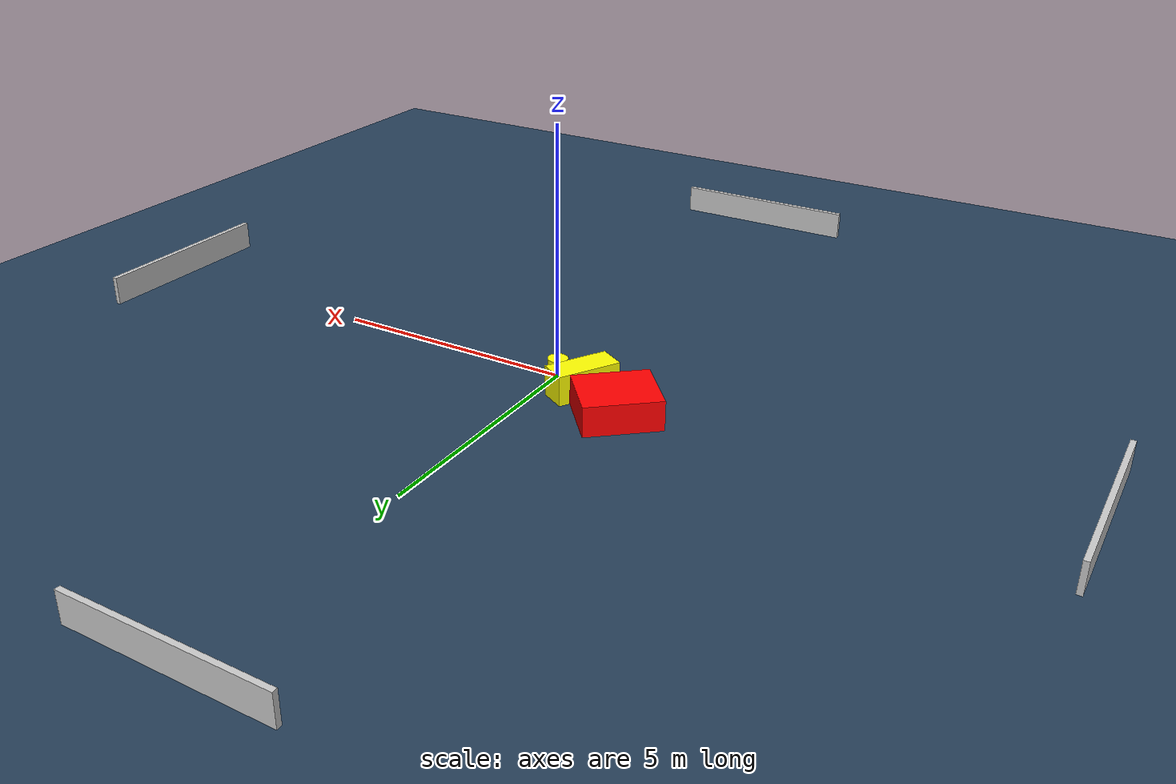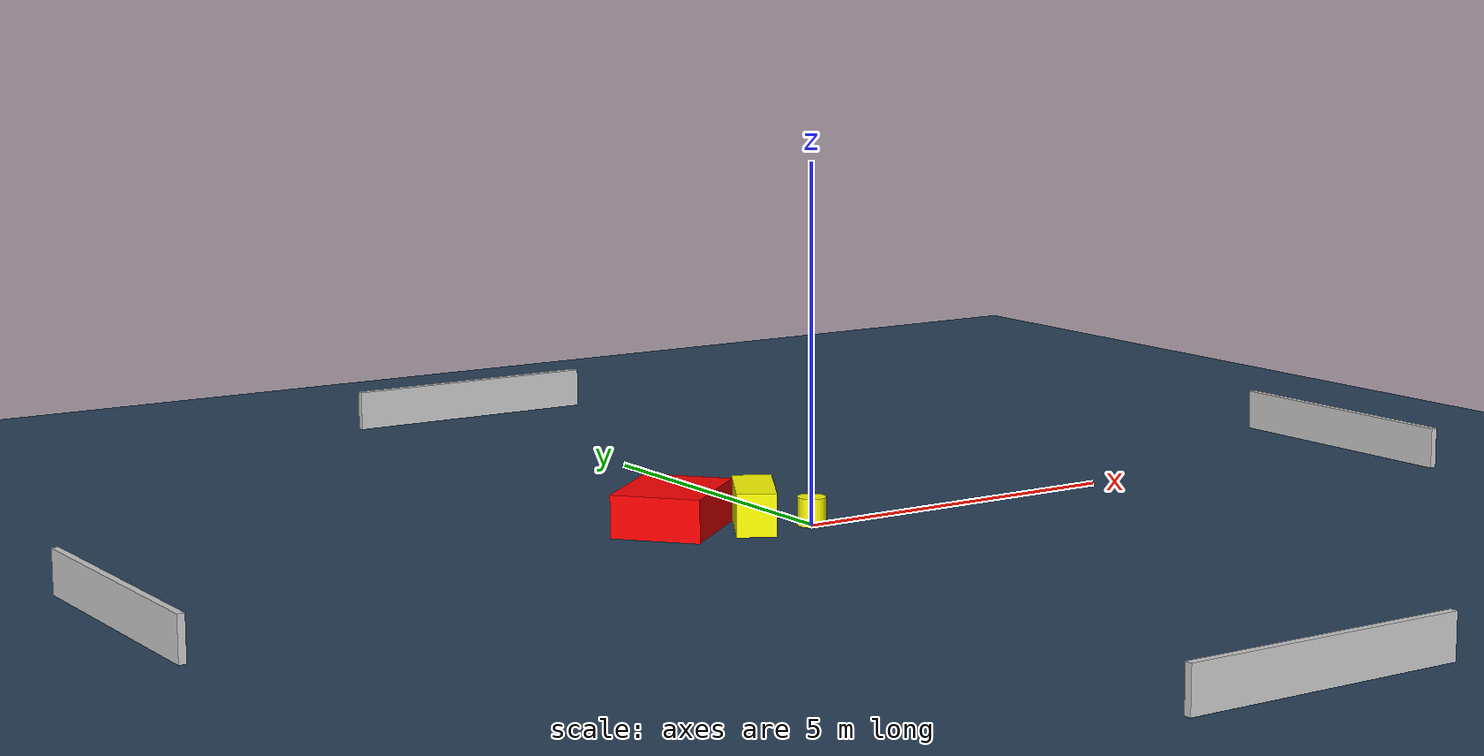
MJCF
<?xml version="1.0" ?>
<mujoco model="generated_environment">
  <option timestep="0.01" integrator="RK4" cone="elliptic"/>
  <default>
    <geom density="1"/>
  </default>
  <asset>
    <texture builtin="gradient" height="3072" name="skybox" rgb1="0.3 0.5 0.7" rgb2="0 0 0" type="skybox" width="512"/>
    <texture builtin="checker" height="300" name="groundplane" rgb1="0.2 0.3 0.4" rgb2="0.1 0.2 0.3" type="2d" width="300"/>
    <material name="groundplane" reflectance="0.2" texrepeat="5 5" texture="groundplane"/>
  </asset>
  <worldbody>
    <light dir="0 0 -1" directional="true" pos="0 0 1.5"/>
    <geom condim="3" friction="0.5 0.005 0.001" material="groundplane" name="floor" pos="0 0 0" size="0 0 0.05" type="plane"/>
    <body name="walls">
      <geom name="wall_1" condim="4" pos="-10.0 0.0 0.3" rgba="0.800000011920929 0.800000011920929 0.800000011920929 1.0" size="0.05 2.0 0.3" type="box"/>
      <geom name="wall_2" condim="4" pos="10.0 0.0 0.3" rgba="0.800000011920929 0.800000011920929 0.800000011920929 1.0" size="0.05 2.0 0.3" type="box"/>
      <geom name="wall_3" condim="4" pos="0.0 -10.0 0.3" rgba="0.800000011920929 0.800000011920929 0.800000011920929 1.0" size="2.0 0.05 0.3" type="box"/>
      <geom name="wall_4" condim="4" pos="0.0 10.0 0.3" rgba="0.800000011920929 0.800000011920929 0.800000011920929 1.0" size="2.0 0.05 0.3" type="box"/>
    </body>
    <body name="robot">
      <joint name="joint_x" type="slide" pos="0 0 0" axis="1 0 0"/>
      <joint name="joint_y" type="slide" pos="0 0 0" axis="0 1 0"/>
      <geom name="robot" type="cylinder" pos="0.0 0.0 0.2" size="0.2 0.2 0.0" mass="5.0" friction="1.0 0.005 0.0001" condim="4" rgba="1.0 1.0 0.0 1.0"/>
    </body>
    <body name="obstacle_1_movable">
      <geom name="obstacle_1_movable" condim="4" pos="-0.734189804491914 0.32977272023666176 0.3" euler="0 0 60.004503044381565" friction="0.0 0.005 0.001" rgba="1.0 1.0 0.0 1.0" size="0.6469020312164767 0.27705567512888996 0.3" type="box" mass="0.1"/>
      <joint type="free"/>
    </body>
    <body name="obstacle_2_static">
      <geom name="obstacle_2_static" condim="4" pos="-1.7456784258246605 0.8334324327160525 0.3" euler="0 0 310.49157970397016" friction="0.0 0.005 0.001" rgba="1.0 0.0 0.0 1.0" size="0.6335983250501821 0.7502484455312024 0.3" type="box"/>
    </body>
  </worldbody>
  <actuator>
    <motor name="actuator_x" joint="joint_x" gear="1" ctrlrange="-1 1"/>
    <motor name="actuator_y" joint="joint_y" gear="1" ctrlrange="-1 1"/>
  </actuator>
</mujoco>
